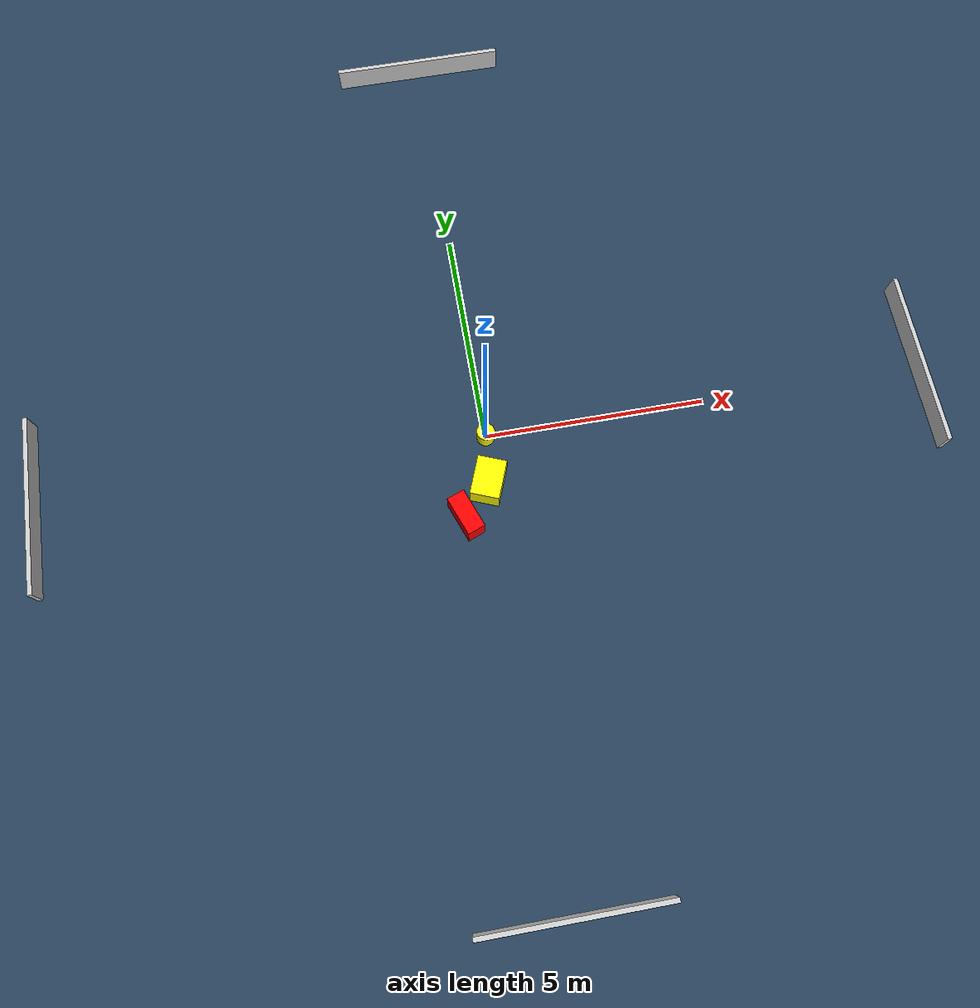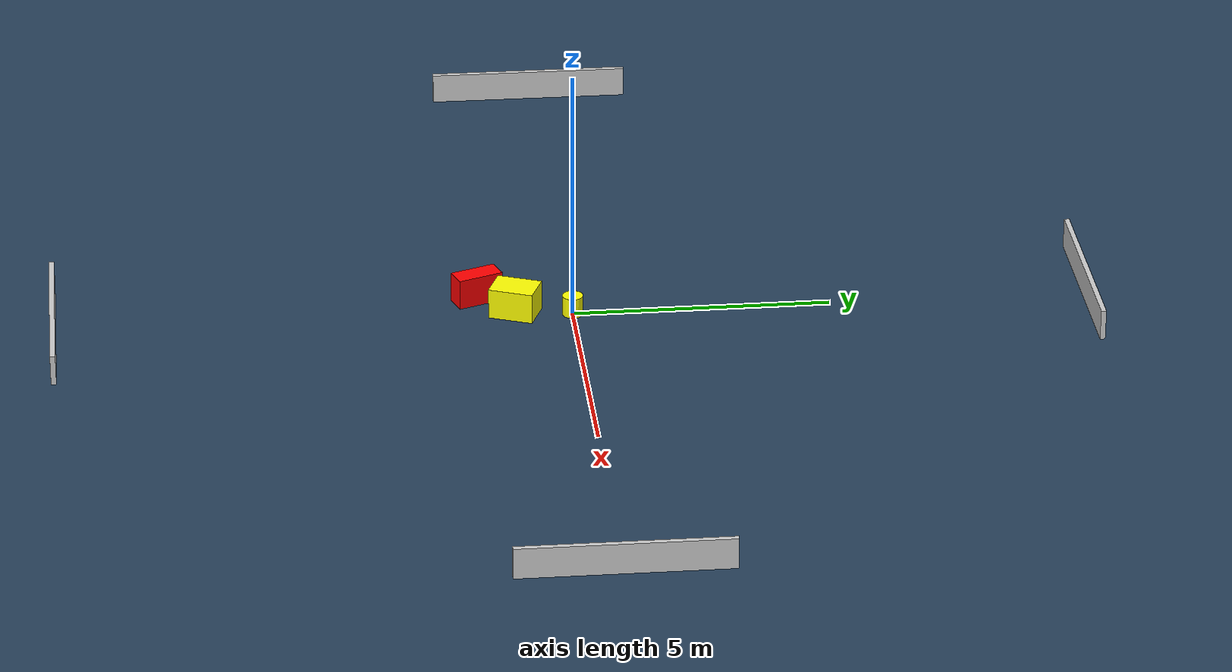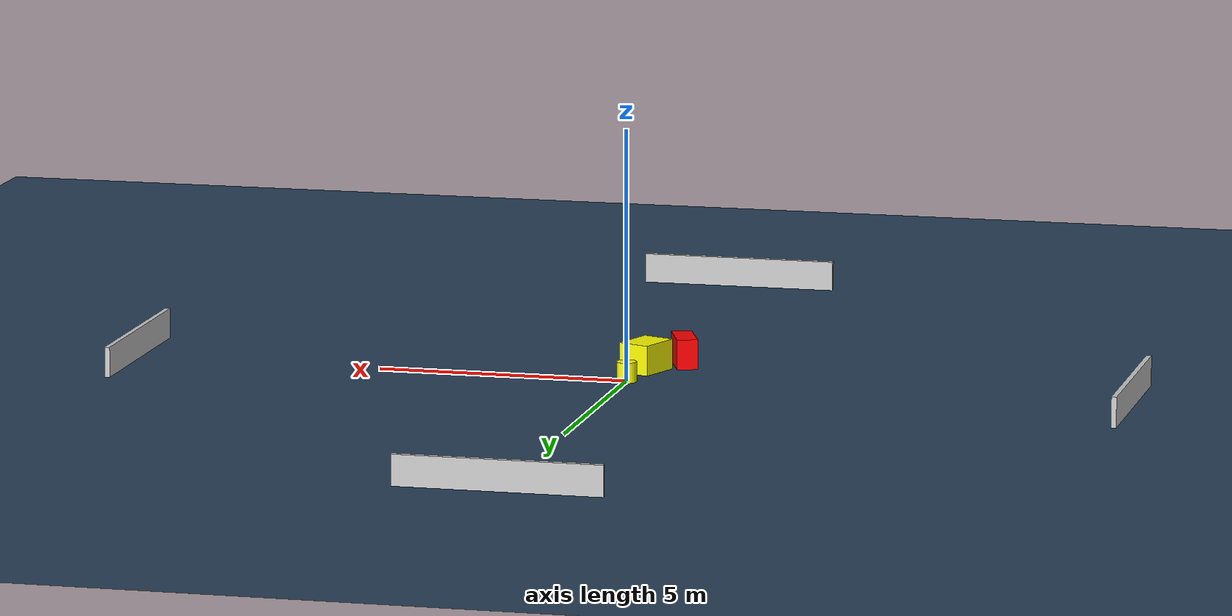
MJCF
<?xml version="1.0" ?>
<mujoco model="generated_environment">
  <option timestep="0.01" integrator="RK4" cone="elliptic"/>
  <default>
    <geom density="1"/>
  </default>
  <asset>
    <texture builtin="gradient" height="3072" name="skybox" rgb1="0.3 0.5 0.7" rgb2="0 0 0" type="skybox" width="512"/>
    <texture builtin="checker" height="300" name="groundplane" rgb1="0.2 0.3 0.4" rgb2="0.1 0.2 0.3" type="2d" width="300"/>
    <material name="groundplane" reflectance="0.2" texrepeat="5 5" texture="groundplane"/>
  </asset>
  <worldbody>
    <light dir="0 0 -1" directional="true" pos="0 0 1.5"/>
    <geom condim="3" friction="0.5 0.005 0.001" material="groundplane" name="floor" pos="0 0 0" size="0 0 0.05" type="plane"/>
    <body name="walls">
      <geom name="wall_1" condim="4" pos="-10.0 0.0 0.3" rgba="0.800000011920929 0.800000011920929 0.800000011920929 1.0" size="0.05 2.0 0.3" type="box"/>
      <geom name="wall_2" condim="4" pos="10.0 0.0 0.3" rgba="0.800000011920929 0.800000011920929 0.800000011920929 1.0" size="0.05 2.0 0.3" type="box"/>
      <geom name="wall_3" condim="4" pos="0.0 -10.0 0.3" rgba="0.800000011920929 0.800000011920929 0.800000011920929 1.0" size="2.0 0.05 0.3" type="box"/>
      <geom name="wall_4" condim="4" pos="0.0 10.0 0.3" rgba="0.800000011920929 0.800000011920929 0.800000011920929 1.0" size="2.0 0.05 0.3" type="box"/>
    </body>
    <body name="robot">
      <joint name="joint_x" type="slide" pos="0 0 0" axis="1 0 0"/>
      <joint name="joint_y" type="slide" pos="0 0 0" axis="0 1 0"/>
      <geom name="robot" type="cylinder" pos="0.0 0.0 0.2" size="0.2 0.2 0.0" mass="5.0" friction="1.0 0.005 0.0001" condim="4" rgba="1.0 1.0 0.0 1.0"/>
    </body>
    <body name="obstacle_1_movable">
      <geom name="obstacle_1_movable" condim="4" pos="-0.12987904500700767 -1.1043782149167531 0.3" euler="0 0 248.36730369020634" friction="0.0 0.005 0.001" rgba="1.0 1.0 0.0 1.0" size="0.43863901391932825 0.3251768955456573 0.3" type="box" mass="0.1"/>
      <joint type="free"/>
    </body>
    <body name="obstacle_2_static">
      <geom name="obstacle_2_static" condim="4" pos="-0.742506620224019 -1.7996322141879095 0.3" euler="0 0 290.74722567016033" friction="0.0 0.005 0.001" rgba="1.0 0.0 0.0 1.0" size="0.4558392404423046 0.20437875423257745 0.3" type="box"/>
    </body>
  </worldbody>
  <actuator>
    <motor name="actuator_x" joint="joint_x" gear="1" ctrlrange="-1 1"/>
    <motor name="actuator_y" joint="joint_y" gear="1" ctrlrange="-1 1"/>
  </actuator>
</mujoco>
